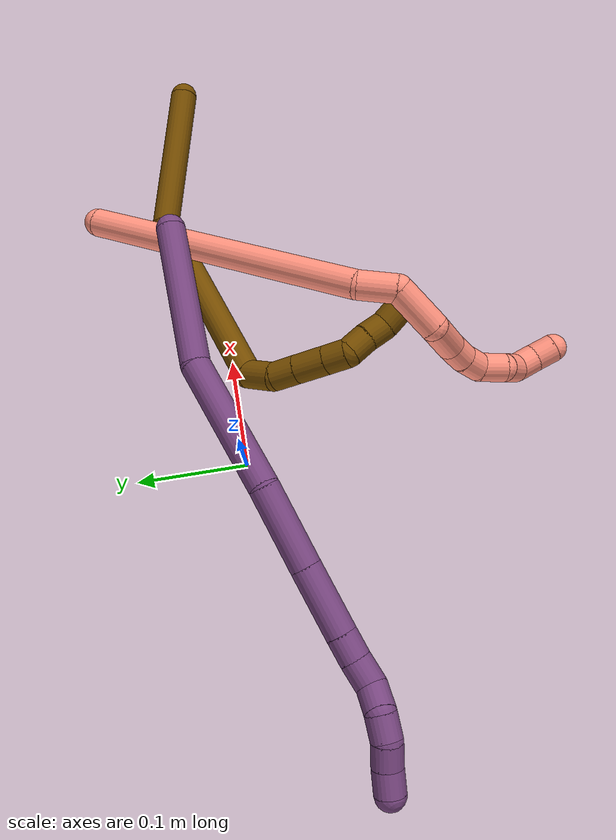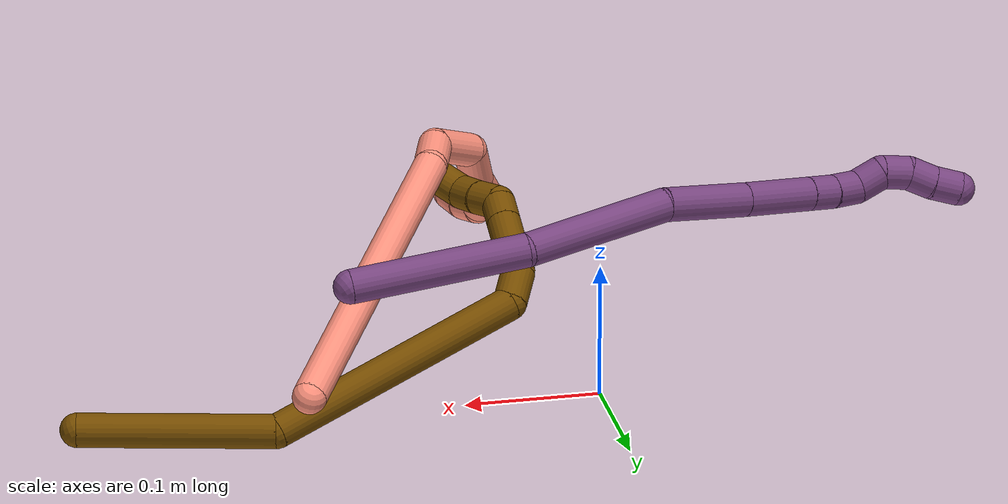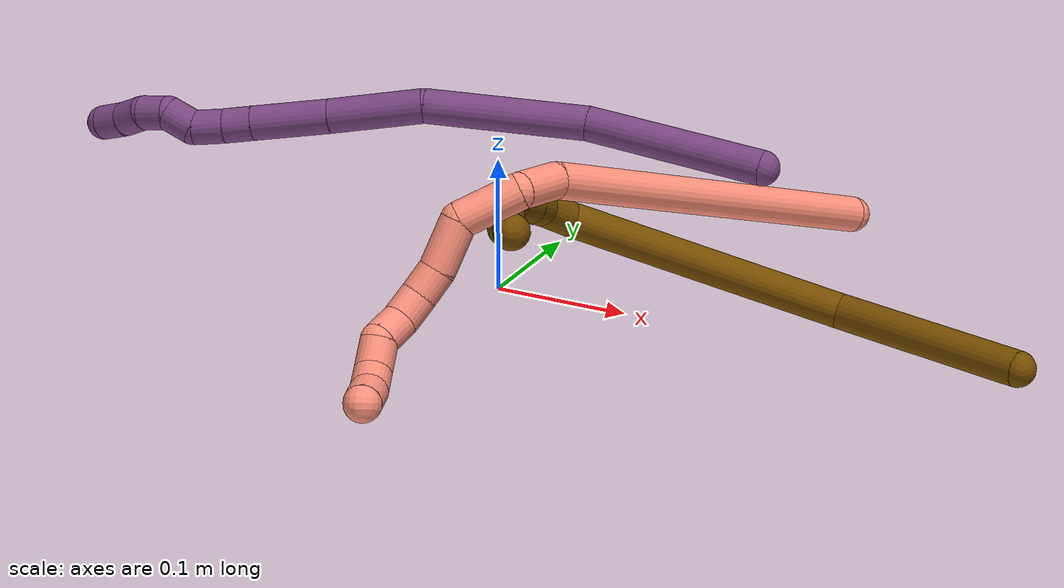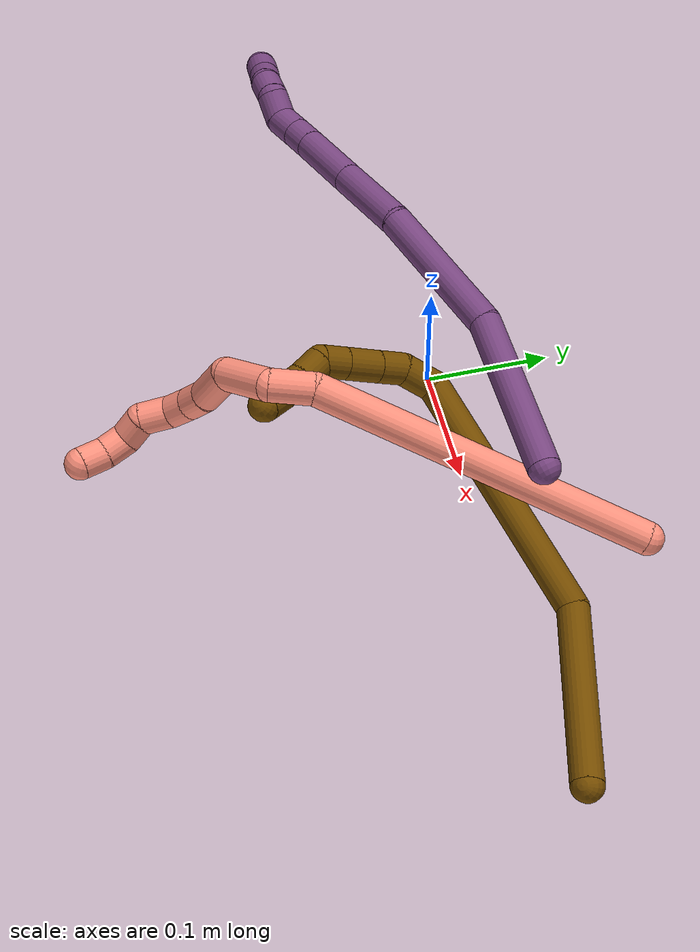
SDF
<sdf version="1.7">
 <world name="default">
  <model name="12">
   <static>0</static>
   <link name="12">
    <collision name="collision-cylinder-e_1_1_4">
     <pose>-0.064158 -0.005597 -0.030637 2.96089 -1.11888 -2.85422</pose>
     <geometry><cylinder><radius>0.0125</radius><length>0.142635</length></cylinder></geometry>
     <surface>
      <friction><ode><mu>1.16</mu><mu2>1.16</mu2><slip1>0</slip1><slip2>0</slip2></ode></friction>
      <contact><ode><kp>1e+06</kp><kd>1</kd><max_vel>0</max_vel><min_depth>0.001</min_depth></ode></contact>
     </surface>
    </collision>
    <visual name="visual-cylinder-e_1_1_4">
     <pose>-0.064158 -0.005597 -0.030637 2.96089 -1.11888 -2.85422</pose>
     <geometry><cylinder><radius>0.0125</radius><length>0.142635</length></cylinder></geometry>
     <material><ambient>0.466667 0.301961 0 1</ambient></material>
    </visual>
    <collision name="collision-cylinder-e_2_4_5">
     <pose>-0.218838 -0.052215 -0.053811 1.39085 -1.13916 -0.981563</pose>
     <geometry><cylinder><radius>0.0125</radius><length>0.199323</length></cylinder></geometry>
     <surface>
      <friction><ode><mu>1.16</mu><mu2>1.16</mu2><slip1>0</slip1><slip2>0</slip2></ode></friction>
      <contact><ode><kp>1e+06</kp><kd>1</kd><max_vel>0</max_vel><min_depth>0.001</min_depth></ode></contact>
     </surface>
    </collision>
    <visual name="visual-cylinder-e_2_4_5">
     <pose>-0.218838 -0.052215 -0.053811 1.39085 -1.13916 -0.981563</pose>
     <geometry><cylinder><radius>0.0125</radius><length>0.199323</length></cylinder></geometry>
     <material><ambient>0.466667 0.301961 0 1</ambient></material>
    </visual>
    <collision name="collision-cylinder-e_3_5_6">
     <pose>-0.316014 -0.101488 -0.037142 0.730814 -0.493793 -0.19226</pose>
     <geometry><cylinder><radius>0.0125</radius><length>0.028082</length></cylinder></geometry>
     <surface>
      <friction><ode><mu>1.16</mu><mu2>1.16</mu2><slip1>0</slip1><slip2>0</slip2></ode></friction>
      <contact><ode><kp>1e+06</kp><kd>1</kd><max_vel>0</max_vel><min_depth>0.001</min_depth></ode></contact>
     </surface>
    </collision>
    <visual name="visual-cylinder-e_3_5_6">
     <pose>-0.316014 -0.101488 -0.037142 0.730814 -0.493793 -0.19226</pose>
     <geometry><cylinder><radius>0.0125</radius><length>0.028082</length></cylinder></geometry>
     <material><ambient>0.466667 0.301961 0 1</ambient></material>
    </visual>
    <collision name="collision-cylinder-e_4_6_7">
     <pose>-0.323293 -0.116709 -0.019294 0.67861 -0.056151 -0.019823</pose>
     <geometry><cylinder><radius>0.0125</radius><length>0.022238</length></cylinder></geometry>
     <surface>
      <friction><ode><mu>1.16</mu><mu2>1.16</mu2><slip1>0</slip1><slip2>0</slip2></ode></friction>
      <contact><ode><kp>1e+06</kp><kd>1</kd><max_vel>0</max_vel><min_depth>0.001</min_depth></ode></contact>
     </surface>
    </collision>
    <visual name="visual-cylinder-e_4_6_7">
     <pose>-0.323293 -0.116709 -0.019294 0.67861 -0.056151 -0.019823</pose>
     <geometry><cylinder><radius>0.0125</radius><length>0.022238</length></cylinder></geometry>
     <material><ambient>0.466667 0.301961 0 1</ambient></material>
    </visual>
    <collision name="collision-cylinder-e_5_7_8">
     <pose>-0.324739 -0.132335 0.000103 0.677757 -0.059462 -0.020964</pose>
     <geometry><cylinder><radius>0.0125</radius><length>0.027663</length></cylinder></geometry>
     <surface>
      <friction><ode><mu>1.16</mu><mu2>1.16</mu2><slip1>0</slip1><slip2>0</slip2></ode></friction>
      <contact><ode><kp>1e+06</kp><kd>1</kd><max_vel>0</max_vel><min_depth>0.001</min_depth></ode></contact>
     </surface>
    </collision>
    <visual name="visual-cylinder-e_5_7_8">
     <pose>-0.324739 -0.132335 0.000103 0.677757 -0.059462 -0.020964</pose>
     <geometry><cylinder><radius>0.0125</radius><length>0.027663</length></cylinder></geometry>
     <material><ambient>0.466667 0.301961 0 1</ambient></material>
    </visual>
    <collision name="collision-cylinder-e_6_8_9">
     <pose>-0.326136 -0.147212 0.018673 0.672235 -0.057515 -0.020099</pose>
     <geometry><cylinder><radius>0.0125</radius><length>0.020008</length></cylinder></geometry>
     <surface>
      <friction><ode><mu>1.16</mu><mu2>1.16</mu2><slip1>0</slip1><slip2>0</slip2></ode></friction>
      <contact><ode><kp>1e+06</kp><kd>1</kd><max_vel>0</max_vel><min_depth>0.001</min_depth></ode></contact>
     </surface>
    </collision>
    <visual name="visual-cylinder-e_6_8_9">
     <pose>-0.326136 -0.147212 0.018673 0.672235 -0.057515 -0.020099</pose>
     <geometry><cylinder><radius>0.0125</radius><length>0.020008</length></cylinder></geometry>
     <material><ambient>0.466667 0.301961 0 1</ambient></material>
    </visual>
    <collision name="collision-cylinder-e_7_9_10">
     <pose>-0.32032 -0.159265 0.031528 0.858148 0.692236 0.327036</pose>
     <geometry><cylinder><radius>0.0125</radius><length>0.020027</length></cylinder></geometry>
     <surface>
      <friction><ode><mu>1.16</mu><mu2>1.16</mu2><slip1>0</slip1><slip2>0</slip2></ode></friction>
      <contact><ode><kp>1e+06</kp><kd>1</kd><max_vel>0</max_vel><min_depth>0.001</min_depth></ode></contact>
     </surface>
    </collision>
    <visual name="visual-cylinder-e_7_9_10">
     <pose>-0.32032 -0.159265 0.031528 0.858148 0.692236 0.327036</pose>
     <geometry><cylinder><radius>0.0125</radius><length>0.020027</length></cylinder></geometry>
     <material><ambient>0.466667 0.301961 0 1</ambient></material>
    </visual>
    <collision name="collision-cylinder-e_8_10_11">
     <pose>-0.308402 -0.171736 0.041622 0.920209 0.58503 0.296304</pose>
     <geometry><cylinder><radius>0.0125</radius><length>0.020016</length></cylinder></geometry>
     <surface>
      <friction><ode><mu>1.16</mu><mu2>1.16</mu2><slip1>0</slip1><slip2>0</slip2></ode></friction>
      <contact><ode><kp>1e+06</kp><kd>1</kd><max_vel>0</max_vel><min_depth>0.001</min_depth></ode></contact>
     </surface>
    </collision>
    <visual name="visual-cylinder-e_8_10_11">
     <pose>-0.308402 -0.171736 0.041622 0.920209 0.58503 0.296304</pose>
     <geometry><cylinder><radius>0.0125</radius><length>0.020016</length></cylinder></geometry>
     <material><ambient>0.466667 0.301961 0 1</ambient></material>
    </visual>
    <collision name="collision-cylinder-e_9_11_2">
     <pose>-0.297779 -0.182263 0.054355 0.468537 0.534569 0.130517</pose>
     <geometry><cylinder><radius>0.0125</radius><length>0.020007</length></cylinder></geometry>
     <surface>
      <friction><ode><mu>1.16</mu><mu2>1.16</mu2><slip1>0</slip1><slip2>0</slip2></ode></friction>
      <contact><ode><kp>1e+06</kp><kd>1</kd><max_vel>0</max_vel><min_depth>0.001</min_depth></ode></contact>
     </surface>
    </collision>
    <visual name="visual-cylinder-e_9_11_2">
     <pose>-0.297779 -0.182263 0.054355 0.468537 0.534569 0.130517</pose>
     <geometry><cylinder><radius>0.0125</radius><length>0.020007</length></cylinder></geometry>
     <material><ambient>0.466667 0.301961 0 1</ambient></material>
    </visual>
    <collision name="collision-sphere-2">
     <pose>-0.292682 -0.18615 0.062035 0 -0 0</pose>
     <geometry><sphere><radius>0.0125</radius></sphere></geometry>
     <surface>
      <friction><ode><mu>1.16</mu><mu2>1.16</mu2><slip1>0</slip1><slip2>0</slip2></ode></friction>
      <contact><ode><kp>1e+06</kp><kd>1</kd><max_vel>0</max_vel><min_depth>0.001</min_depth></ode></contact>
     </surface>
    </collision>
    <visual name="visual-sphere-2">
     <pose>-0.292682 -0.18615 0.062035 0 -0 0</pose>
     <geometry><sphere><radius>0.0125</radius></sphere></geometry>
     <material><ambient>0.466667 0.301961 0 1</ambient></material>
    </visual>
    <collision name="collision-sphere-11">
     <pose>-0.302875 -0.178376 0.046675 0 -0 0</pose>
     <geometry><sphere><radius>0.0125</radius></sphere></geometry>
     <surface>
      <friction><ode><mu>1.16</mu><mu2>1.16</mu2><slip1>0</slip1><slip2>0</slip2></ode></friction>
      <contact><ode><kp>1e+06</kp><kd>1</kd><max_vel>0</max_vel><min_depth>0.001</min_depth></ode></contact>
     </surface>
    </collision>
    <visual name="visual-sphere-11">
     <pose>-0.302875 -0.178376 0.046675 0 -0 0</pose>
     <geometry><sphere><radius>0.0125</radius></sphere></geometry>
     <material><ambient>0.466667 0.301961 0 1</ambient></material>
    </visual>
    <collision name="collision-sphere-10">
     <pose>-0.313928 -0.165097 0.036568 0 -0 0</pose>
     <geometry><sphere><radius>0.0125</radius></sphere></geometry>
     <surface>
      <friction><ode><mu>1.16</mu><mu2>1.16</mu2><slip1>0</slip1><slip2>0</slip2></ode></friction>
      <contact><ode><kp>1e+06</kp><kd>1</kd><max_vel>0</max_vel><min_depth>0.001</min_depth></ode></contact>
     </surface>
    </collision>
    <visual name="visual-sphere-10">
     <pose>-0.313928 -0.165097 0.036568 0 -0 0</pose>
     <geometry><sphere><radius>0.0125</radius></sphere></geometry>
     <material><ambient>0.466667 0.301961 0 1</ambient></material>
    </visual>
    <collision name="collision-sphere-9">
     <pose>-0.326711 -0.153432 0.026488 0 -0 0</pose>
     <geometry><sphere><radius>0.0125</radius></sphere></geometry>
     <surface>
      <friction><ode><mu>1.16</mu><mu2>1.16</mu2><slip1>0</slip1><slip2>0</slip2></ode></friction>
      <contact><ode><kp>1e+06</kp><kd>1</kd><max_vel>0</max_vel><min_depth>0.001</min_depth></ode></contact>
     </surface>
    </collision>
    <visual name="visual-sphere-9">
     <pose>-0.326711 -0.153432 0.026488 0 -0 0</pose>
     <geometry><sphere><radius>0.0125</radius></sphere></geometry>
     <material><ambient>0.466667 0.301961 0 1</ambient></material>
    </visual>
    <collision name="collision-sphere-4">
     <pose>-0.128316 -0.011194 -0.061273 0 -0 0</pose>
     <geometry><sphere><radius>0.0125</radius></sphere></geometry>
     <surface>
      <friction><ode><mu>1.16</mu><mu2>1.16</mu2><slip1>0</slip1><slip2>0</slip2></ode></friction>
      <contact><ode><kp>1e+06</kp><kd>1</kd><max_vel>0</max_vel><min_depth>0.001</min_depth></ode></contact>
     </surface>
    </collision>
    <visual name="visual-sphere-4">
     <pose>-0.128316 -0.011194 -0.061273 0 -0 0</pose>
     <geometry><sphere><radius>0.0125</radius></sphere></geometry>
     <material><ambient>0.466667 0.301961 0 1</ambient></material>
    </visual>
    <collision name="collision-sphere-1">
     <geometry><sphere><radius>0.0125</radius></sphere></geometry>
     <surface>
      <friction><ode><mu>1.16</mu><mu2>1.16</mu2><slip1>0</slip1><slip2>0</slip2></ode></friction>
      <contact><ode><kp>1e+06</kp><kd>1</kd><max_vel>0</max_vel><min_depth>0.001</min_depth></ode></contact>
     </surface>
    </collision>
    <visual name="visual-sphere-1">
     <geometry><sphere><radius>0.0125</radius></sphere></geometry>
     <material><ambient>0.466667 0.301961 0 1</ambient></material>
    </visual>
    <collision name="collision-sphere-8">
     <pose>-0.325561 -0.140993 0.010859 0 -0 0</pose>
     <geometry><sphere><radius>0.0125</radius></sphere></geometry>
     <surface>
      <friction><ode><mu>1.16</mu><mu2>1.16</mu2><slip1>0</slip1><slip2>0</slip2></ode></friction>
      <contact><ode><kp>1e+06</kp><kd>1</kd><max_vel>0</max_vel><min_depth>0.001</min_depth></ode></contact>
     </surface>
    </collision>
    <visual name="visual-sphere-8">
     <pose>-0.325561 -0.140993 0.010859 0 -0 0</pose>
     <geometry><sphere><radius>0.0125</radius></sphere></geometry>
     <material><ambient>0.466667 0.301961 0 1</ambient></material>
    </visual>
    <collision name="collision-sphere-5">
     <pose>-0.309359 -0.093236 -0.046349 0 -0 0</pose>
     <geometry><sphere><radius>0.0125</radius></sphere></geometry>
     <surface>
      <friction><ode><mu>1.16</mu><mu2>1.16</mu2><slip1>0</slip1><slip2>0</slip2></ode></friction>
      <contact><ode><kp>1e+06</kp><kd>1</kd><max_vel>0</max_vel><min_depth>0.001</min_depth></ode></contact>
     </surface>
    </collision>
    <visual name="visual-sphere-5">
     <pose>-0.309359 -0.093236 -0.046349 0 -0 0</pose>
     <geometry><sphere><radius>0.0125</radius></sphere></geometry>
     <material><ambient>0.466667 0.301961 0 1</ambient></material>
    </visual>
    <collision name="collision-sphere-6">
     <pose>-0.322669 -0.10974 -0.027936 0 -0 0</pose>
     <geometry><sphere><radius>0.0125</radius></sphere></geometry>
     <surface>
      <friction><ode><mu>1.16</mu><mu2>1.16</mu2><slip1>0</slip1><slip2>0</slip2></ode></friction>
      <contact><ode><kp>1e+06</kp><kd>1</kd><max_vel>0</max_vel><min_depth>0.001</min_depth></ode></contact>
     </surface>
    </collision>
    <visual name="visual-sphere-6">
     <pose>-0.322669 -0.10974 -0.027936 0 -0 0</pose>
     <geometry><sphere><radius>0.0125</radius></sphere></geometry>
     <material><ambient>0.466667 0.301961 0 1</ambient></material>
    </visual>
    <collision name="collision-sphere-7">
     <pose>-0.323917 -0.123678 -0.010652 0 -0 0</pose>
     <geometry><sphere><radius>0.0125</radius></sphere></geometry>
     <surface>
      <friction><ode><mu>1.16</mu><mu2>1.16</mu2><slip1>0</slip1><slip2>0</slip2></ode></friction>
      <contact><ode><kp>1e+06</kp><kd>1</kd><max_vel>0</max_vel><min_depth>0.001</min_depth></ode></contact>
     </surface>
    </collision>
    <visual name="visual-sphere-7">
     <pose>-0.323917 -0.123678 -0.010652 0 -0 0</pose>
     <geometry><sphere><radius>0.0125</radius></sphere></geometry>
     <material><ambient>0.466667 0.301961 0 1</ambient></material>
    </visual>
    <inertial>
     <pose>-0.205777 -0.067062 -0.027279 0 -0 0</pose>
     <mass>0.5</mass>
     <inertia>
      <ixx>-0.000222</ixx>
      <ixy>0</ixy>
      <ixz>0</ixz>
      <iyy>0.000541</iyy>
      <iyz>0</iyz>
      <izz>0.001135</izz>
     </inertia>
    </inertial>
   </link>
   <pose>0.383858 0.010442 0.012184 0.452143 0.445817 -0.12226</pose>
  </model>
  <model name="16">
   <static>0</static>
   <link name="16">
    <collision name="collision-cylinder-e_1_1_4">
     <pose>-0.040674 -0.124476 0.001271 1.56059 -0.31581 -0.312654</pose>
     <geometry><cylinder><radius>0.0125</radius><length>0.261918</length></cylinder></geometry>
     <surface>
      <friction><ode><mu>1.16</mu><mu2>1.16</mu2><slip1>0</slip1><slip2>0</slip2></ode></friction>
      <contact><ode><kp>1e+06</kp><kd>1</kd><max_vel>0</max_vel><min_depth>0.001</min_depth></ode></contact>
     </surface>
    </collision>
    <visual name="visual-cylinder-e_1_1_4">
     <pose>-0.040674 -0.124476 0.001271 1.56059 -0.31581 -0.312654</pose>
     <geometry><cylinder><radius>0.0125</radius><length>0.261918</length></cylinder></geometry>
     <material><ambient>1 0.576471 0.494118 1</ambient></material>
    </visual>
    <collision name="collision-cylinder-e_2_4_5">
     <pose>-0.083959 -0.264886 -0.002346 1.86846 -0.155396 -0.209866</pose>
     <geometry><cylinder><radius>0.0125</radius><length>0.03374</length></cylinder></geometry>
     <surface>
      <friction><ode><mu>1.16</mu><mu2>1.16</mu2><slip1>0</slip1><slip2>0</slip2></ode></friction>
      <contact><ode><kp>1e+06</kp><kd>1</kd><max_vel>0</max_vel><min_depth>0.001</min_depth></ode></contact>
     </surface>
    </collision>
    <visual name="visual-cylinder-e_2_4_5">
     <pose>-0.083959 -0.264886 -0.002346 1.86846 -0.155396 -0.209866</pose>
     <geometry><cylinder><radius>0.0125</radius><length>0.03374</length></cylinder></geometry>
     <material><ambient>1 0.576471 0.494118 1</ambient></material>
    </visual>
    <collision name="collision-cylinder-e_3_5_6">
     <pose>-0.102237 -0.292221 -0.017362 2.2971 -0.798903 -1.50857</pose>
     <geometry><cylinder><radius>0.0125</radius><length>0.043727</length></cylinder></geometry>
     <surface>
      <friction><ode><mu>1.16</mu><mu2>1.16</mu2><slip1>0</slip1><slip2>0</slip2></ode></friction>
      <contact><ode><kp>1e+06</kp><kd>1</kd><max_vel>0</max_vel><min_depth>0.001</min_depth></ode></contact>
     </surface>
    </collision>
    <visual name="visual-cylinder-e_3_5_6">
     <pose>-0.102237 -0.292221 -0.017362 2.2971 -0.798903 -1.50857</pose>
     <geometry><cylinder><radius>0.0125</radius><length>0.043727</length></cylinder></geometry>
     <material><ambient>1 0.576471 0.494118 1</ambient></material>
    </visual>
    <collision name="collision-cylinder-e_4_6_7">
     <pose>-0.12449 -0.305645 -0.043513 3.016 -0.387142 -2.52078</pose>
     <geometry><cylinder><radius>0.0125</radius><length>0.034885</length></cylinder></geometry>
     <surface>
      <friction><ode><mu>1.16</mu><mu2>1.16</mu2><slip1>0</slip1><slip2>0</slip2></ode></friction>
      <contact><ode><kp>1e+06</kp><kd>1</kd><max_vel>0</max_vel><min_depth>0.001</min_depth></ode></contact>
     </surface>
    </collision>
    <visual name="visual-cylinder-e_4_6_7">
     <pose>-0.12449 -0.305645 -0.043513 3.016 -0.387142 -2.52078</pose>
     <geometry><cylinder><radius>0.0125</radius><length>0.034885</length></cylinder></geometry>
     <material><ambient>1 0.576471 0.494118 1</ambient></material>
    </visual>
    <collision name="collision-cylinder-e_5_7_8">
     <pose>-0.135833 -0.3107 -0.067897 2.79361 -0.491333 -1.91876</pose>
     <geometry><cylinder><radius>0.0125</radius><length>0.02017</length></cylinder></geometry>
     <surface>
      <friction><ode><mu>1.16</mu><mu2>1.16</mu2><slip1>0</slip1><slip2>0</slip2></ode></friction>
      <contact><ode><kp>1e+06</kp><kd>1</kd><max_vel>0</max_vel><min_depth>0.001</min_depth></ode></contact>
     </surface>
    </collision>
    <visual name="visual-cylinder-e_5_7_8">
     <pose>-0.135833 -0.3107 -0.067897 2.79361 -0.491333 -1.91876</pose>
     <geometry><cylinder><radius>0.0125</radius><length>0.02017</length></cylinder></geometry>
     <material><ambient>1 0.576471 0.494118 1</ambient></material>
    </visual>
    <collision name="collision-cylinder-e_6_8_9">
     <pose>-0.144419 -0.318386 -0.084688 2.63731 -0.378326 -1.27819</pose>
     <geometry><cylinder><radius>0.0125</radius><length>0.020727</length></cylinder></geometry>
     <surface>
      <friction><ode><mu>1.16</mu><mu2>1.16</mu2><slip1>0</slip1><slip2>0</slip2></ode></friction>
      <contact><ode><kp>1e+06</kp><kd>1</kd><max_vel>0</max_vel><min_depth>0.001</min_depth></ode></contact>
     </surface>
    </collision>
    <visual name="visual-cylinder-e_6_8_9">
     <pose>-0.144419 -0.318386 -0.084688 2.63731 -0.378326 -1.27819</pose>
     <geometry><cylinder><radius>0.0125</radius><length>0.020727</length></cylinder></geometry>
     <material><ambient>1 0.576471 0.494118 1</ambient></material>
    </visual>
    <collision name="collision-cylinder-e_7_9_10">
     <pose>-0.148592 -0.332521 -0.09988 2.19016 -0.029575 -0.057396</pose>
     <geometry><cylinder><radius>0.0125</radius><length>0.023299</length></cylinder></geometry>
     <surface>
      <friction><ode><mu>1.16</mu><mu2>1.16</mu2><slip1>0</slip1><slip2>0</slip2></ode></friction>
      <contact><ode><kp>1e+06</kp><kd>1</kd><max_vel>0</max_vel><min_depth>0.001</min_depth></ode></contact>
     </surface>
    </collision>
    <visual name="visual-cylinder-e_7_9_10">
     <pose>-0.148592 -0.332521 -0.09988 2.19016 -0.029575 -0.057396</pose>
     <geometry><cylinder><radius>0.0125</radius><length>0.023299</length></cylinder></geometry>
     <material><ambient>1 0.576471 0.494118 1</ambient></material>
    </visual>
    <collision name="collision-cylinder-e_8_10_11">
     <pose>-0.148821 -0.344757 -0.116812 2.87719 0.010953 0.082323</pose>
     <geometry><cylinder><radius>0.0125</radius><length>0.021079</length></cylinder></geometry>
     <surface>
      <friction><ode><mu>1.16</mu><mu2>1.16</mu2><slip1>0</slip1><slip2>0</slip2></ode></friction>
      <contact><ode><kp>1e+06</kp><kd>1</kd><max_vel>0</max_vel><min_depth>0.001</min_depth></ode></contact>
     </surface>
    </collision>
    <visual name="visual-cylinder-e_8_10_11">
     <pose>-0.148821 -0.344757 -0.116812 2.87719 0.010953 0.082323</pose>
     <geometry><cylinder><radius>0.0125</radius><length>0.021079</length></cylinder></geometry>
     <material><ambient>1 0.576471 0.494118 1</ambient></material>
    </visual>
    <collision name="collision-cylinder-e_9_11_12">
     <pose>-0.144428 -0.35432 -0.133124 2.3045 0.436478 0.924981</pose>
     <geometry><cylinder><radius>0.0125</radius><length>0.020234</length></cylinder></geometry>
     <surface>
      <friction><ode><mu>1.16</mu><mu2>1.16</mu2><slip1>0</slip1><slip2>0</slip2></ode></friction>
      <contact><ode><kp>1e+06</kp><kd>1</kd><max_vel>0</max_vel><min_depth>0.001</min_depth></ode></contact>
     </surface>
    </collision>
    <visual name="visual-cylinder-e_9_11_12">
     <pose>-0.144428 -0.35432 -0.133124 2.3045 0.436478 0.924981</pose>
     <geometry><cylinder><radius>0.0125</radius><length>0.020234</length></cylinder></geometry>
     <material><ambient>1 0.576471 0.494118 1</ambient></material>
    </visual>
    <collision name="collision-cylinder-e_10_12_2">
     <pose>-0.135778 -0.369312 -0.14328 2.02711 0.447312 0.700024</pose>
     <geometry><cylinder><radius>0.0125</radius><length>0.020221</length></cylinder></geometry>
     <surface>
      <friction><ode><mu>1.16</mu><mu2>1.16</mu2><slip1>0</slip1><slip2>0</slip2></ode></friction>
      <contact><ode><kp>1e+06</kp><kd>1</kd><max_vel>0</max_vel><min_depth>0.001</min_depth></ode></contact>
     </surface>
    </collision>
    <visual name="visual-cylinder-e_10_12_2">
     <pose>-0.135778 -0.369312 -0.14328 2.02711 0.447312 0.700024</pose>
     <geometry><cylinder><radius>0.0125</radius><length>0.020221</length></cylinder></geometry>
     <material><ambient>1 0.576471 0.494118 1</ambient></material>
    </visual>
    <collision name="collision-sphere-2">
     <pose>-0.131405 -0.377495 -0.147297 0 -0 0</pose>
     <geometry><sphere><radius>0.0125</radius></sphere></geometry>
     <surface>
      <friction><ode><mu>1.16</mu><mu2>1.16</mu2><slip1>0</slip1><slip2>0</slip2></ode></friction>
      <contact><ode><kp>1e+06</kp><kd>1</kd><max_vel>0</max_vel><min_depth>0.001</min_depth></ode></contact>
     </surface>
    </collision>
    <visual name="visual-sphere-2">
     <pose>-0.131405 -0.377495 -0.147297 0 -0 0</pose>
     <geometry><sphere><radius>0.0125</radius></sphere></geometry>
     <material><ambient>1 0.576471 0.494118 1</ambient></material>
    </visual>
    <collision name="collision-sphere-12">
     <pose>-0.140151 -0.361129 -0.139263 0 -0 0</pose>
     <geometry><sphere><radius>0.0125</radius></sphere></geometry>
     <surface>
      <friction><ode><mu>1.16</mu><mu2>1.16</mu2><slip1>0</slip1><slip2>0</slip2></ode></friction>
      <contact><ode><kp>1e+06</kp><kd>1</kd><max_vel>0</max_vel><min_depth>0.001</min_depth></ode></contact>
     </surface>
    </collision>
    <visual name="visual-sphere-12">
     <pose>-0.140151 -0.361129 -0.139263 0 -0 0</pose>
     <geometry><sphere><radius>0.0125</radius></sphere></geometry>
     <material><ambient>1 0.576471 0.494118 1</ambient></material>
    </visual>
    <collision name="collision-sphere-11">
     <pose>-0.148705 -0.347511 -0.126985 0 -0 0</pose>
     <geometry><sphere><radius>0.0125</radius></sphere></geometry>
     <surface>
      <friction><ode><mu>1.16</mu><mu2>1.16</mu2><slip1>0</slip1><slip2>0</slip2></ode></friction>
      <contact><ode><kp>1e+06</kp><kd>1</kd><max_vel>0</max_vel><min_depth>0.001</min_depth></ode></contact>
     </surface>
    </collision>
    <visual name="visual-sphere-11">
     <pose>-0.148705 -0.347511 -0.126985 0 -0 0</pose>
     <geometry><sphere><radius>0.0125</radius></sphere></geometry>
     <material><ambient>1 0.576471 0.494118 1</ambient></material>
    </visual>
    <collision name="collision-sphere-10">
     <pose>-0.148936 -0.342003 -0.10664 0 -0 0</pose>
     <geometry><sphere><radius>0.0125</radius></sphere></geometry>
     <surface>
      <friction><ode><mu>1.16</mu><mu2>1.16</mu2><slip1>0</slip1><slip2>0</slip2></ode></friction>
      <contact><ode><kp>1e+06</kp><kd>1</kd><max_vel>0</max_vel><min_depth>0.001</min_depth></ode></contact>
     </surface>
    </collision>
    <visual name="visual-sphere-10">
     <pose>-0.148936 -0.342003 -0.10664 0 -0 0</pose>
     <geometry><sphere><radius>0.0125</radius></sphere></geometry>
     <material><ambient>1 0.576471 0.494118 1</ambient></material>
    </visual>
    <collision name="collision-sphere-9">
     <pose>-0.148247 -0.323039 -0.09312 0 -0 0</pose>
     <geometry><sphere><radius>0.0125</radius></sphere></geometry>
     <surface>
      <friction><ode><mu>1.16</mu><mu2>1.16</mu2><slip1>0</slip1><slip2>0</slip2></ode></friction>
      <contact><ode><kp>1e+06</kp><kd>1</kd><max_vel>0</max_vel><min_depth>0.001</min_depth></ode></contact>
     </surface>
    </collision>
    <visual name="visual-sphere-9">
     <pose>-0.148247 -0.323039 -0.09312 0 -0 0</pose>
     <geometry><sphere><radius>0.0125</radius></sphere></geometry>
     <material><ambient>1 0.576471 0.494118 1</ambient></material>
    </visual>
    <collision name="collision-sphere-4">
     <pose>-0.081348 -0.248952 0.002542 0 -0 0</pose>
     <geometry><sphere><radius>0.0125</radius></sphere></geometry>
     <surface>
      <friction><ode><mu>1.16</mu><mu2>1.16</mu2><slip1>0</slip1><slip2>0</slip2></ode></friction>
      <contact><ode><kp>1e+06</kp><kd>1</kd><max_vel>0</max_vel><min_depth>0.001</min_depth></ode></contact>
     </surface>
    </collision>
    <visual name="visual-sphere-4">
     <pose>-0.081348 -0.248952 0.002542 0 -0 0</pose>
     <geometry><sphere><radius>0.0125</radius></sphere></geometry>
     <material><ambient>1 0.576471 0.494118 1</ambient></material>
    </visual>
    <collision name="collision-sphere-1">
     <geometry><sphere><radius>0.0125</radius></sphere></geometry>
     <surface>
      <friction><ode><mu>1.16</mu><mu2>1.16</mu2><slip1>0</slip1><slip2>0</slip2></ode></friction>
      <contact><ode><kp>1e+06</kp><kd>1</kd><max_vel>0</max_vel><min_depth>0.001</min_depth></ode></contact>
     </surface>
    </collision>
    <visual name="visual-sphere-1">
     <geometry><sphere><radius>0.0125</radius></sphere></geometry>
     <material><ambient>1 0.576471 0.494118 1</ambient></material>
    </visual>
    <collision name="collision-sphere-8">
     <pose>-0.140591 -0.313733 -0.076256 0 -0 0</pose>
     <geometry><sphere><radius>0.0125</radius></sphere></geometry>
     <surface>
      <friction><ode><mu>1.16</mu><mu2>1.16</mu2><slip1>0</slip1><slip2>0</slip2></ode></friction>
      <contact><ode><kp>1e+06</kp><kd>1</kd><max_vel>0</max_vel><min_depth>0.001</min_depth></ode></contact>
     </surface>
    </collision>
    <visual name="visual-sphere-8">
     <pose>-0.140591 -0.313733 -0.076256 0 -0 0</pose>
     <geometry><sphere><radius>0.0125</radius></sphere></geometry>
     <material><ambient>1 0.576471 0.494118 1</ambient></material>
    </visual>
    <collision name="collision-sphere-5">
     <pose>-0.08657 -0.28082 -0.007234 0 -0 0</pose>
     <geometry><sphere><radius>0.0125</radius></sphere></geometry>
     <surface>
      <friction><ode><mu>1.16</mu><mu2>1.16</mu2><slip1>0</slip1><slip2>0</slip2></ode></friction>
      <contact><ode><kp>1e+06</kp><kd>1</kd><max_vel>0</max_vel><min_depth>0.001</min_depth></ode></contact>
     </surface>
    </collision>
    <visual name="visual-sphere-5">
     <pose>-0.08657 -0.28082 -0.007234 0 -0 0</pose>
     <geometry><sphere><radius>0.0125</radius></sphere></geometry>
     <material><ambient>1 0.576471 0.494118 1</ambient></material>
    </visual>
    <collision name="collision-sphere-6">
     <pose>-0.117904 -0.303622 -0.027489 0 -0 0</pose>
     <geometry><sphere><radius>0.0125</radius></sphere></geometry>
     <surface>
      <friction><ode><mu>1.16</mu><mu2>1.16</mu2><slip1>0</slip1><slip2>0</slip2></ode></friction>
      <contact><ode><kp>1e+06</kp><kd>1</kd><max_vel>0</max_vel><min_depth>0.001</min_depth></ode></contact>
     </surface>
    </collision>
    <visual name="visual-sphere-6">
     <pose>-0.117904 -0.303622 -0.027489 0 -0 0</pose>
     <geometry><sphere><radius>0.0125</radius></sphere></geometry>
     <material><ambient>1 0.576471 0.494118 1</ambient></material>
    </visual>
    <collision name="collision-sphere-7">
     <pose>-0.131075 -0.307668 -0.059538 0 -0 0</pose>
     <geometry><sphere><radius>0.0125</radius></sphere></geometry>
     <surface>
      <friction><ode><mu>1.16</mu><mu2>1.16</mu2><slip1>0</slip1><slip2>0</slip2></ode></friction>
      <contact><ode><kp>1e+06</kp><kd>1</kd><max_vel>0</max_vel><min_depth>0.001</min_depth></ode></contact>
     </surface>
    </collision>
    <visual name="visual-sphere-7">
     <pose>-0.131075 -0.307668 -0.059538 0 -0 0</pose>
     <geometry><sphere><radius>0.0125</radius></sphere></geometry>
     <material><ambient>1 0.576471 0.494118 1</ambient></material>
    </visual>
    <inertial>
     <pose>-0.080599 -0.214996 -0.031057 0 -0 0</pose>
     <mass>0.5</mass>
     <inertia>
      <ixx>0.000909</ixx>
      <ixy>0</ixy>
      <ixz>0</ixz>
      <iyy>-0.000317</iyy>
      <iyz>0</iyz>
      <izz>0.001913</izz>
     </inertia>
    </inertial>
   </link>
   <pose>0.231136 0.10006 0.06381 -0.403981 -0.242633 -0.118766</pose>
  </model>
  <model name="20">
   <static>0</static>
   <link name="20">
    <collision name="collision-cylinder-e_1_1_4">
     <pose>-0.02501 0.00324 0.060291 -0.05368 -0.392713 0.010681</pose>
     <geometry><cylinder><radius>0.0125</radius><length>0.130705</length></cylinder></geometry>
     <surface>
      <friction><ode><mu>1.16</mu><mu2>1.16</mu2><slip1>0</slip1><slip2>0</slip2></ode></friction>
      <contact><ode><kp>1e+06</kp><kd>1</kd><max_vel>0</max_vel><min_depth>0.001</min_depth></ode></contact>
     </surface>
    </collision>
    <visual name="visual-cylinder-e_1_1_4">
     <pose>-0.02501 0.00324 0.060291 -0.05368 -0.392713 0.010681</pose>
     <geometry><cylinder><radius>0.0125</radius><length>0.130705</length></cylinder></geometry>
     <material><ambient>0.478431 0.278431 0.509804 1</ambient></material>
    </visual>
    <collision name="collision-cylinder-e_2_4_5">
     <pose>-0.065746 -0.006852 0.175251 0.239186 -0.272501 -0.032947</pose>
     <geometry><cylinder><radius>0.0125</radius><length>0.116856</length></cylinder></geometry>
     <surface>
      <friction><ode><mu>1.16</mu><mu2>1.16</mu2><slip1>0</slip1><slip2>0</slip2></ode></friction>
      <contact><ode><kp>1e+06</kp><kd>1</kd><max_vel>0</max_vel><min_depth>0.001</min_depth></ode></contact>
     </surface>
    </collision>
    <visual name="visual-cylinder-e_2_4_5">
     <pose>-0.065746 -0.006852 0.175251 0.239186 -0.272501 -0.032947</pose>
     <geometry><cylinder><radius>0.0125</radius><length>0.116856</length></cylinder></geometry>
     <material><ambient>0.478431 0.278431 0.509804 1</ambient></material>
    </visual>
    <collision name="collision-cylinder-e_3_5_6">
     <pose>-0.097317 -0.031024 0.258576 0.361675 -0.477323 -0.088908</pose>
     <geometry><cylinder><radius>0.0125</radius><length>0.068984</length></cylinder></geometry>
     <surface>
      <friction><ode><mu>1.16</mu><mu2>1.16</mu2><slip1>0</slip1><slip2>0</slip2></ode></friction>
      <contact><ode><kp>1e+06</kp><kd>1</kd><max_vel>0</max_vel><min_depth>0.001</min_depth></ode></contact>
     </surface>
    </collision>
    <visual name="visual-cylinder-e_3_5_6">
     <pose>-0.097317 -0.031024 0.258576 0.361675 -0.477323 -0.088908</pose>
     <geometry><cylinder><radius>0.0125</radius><length>0.068984</length></cylinder></geometry>
     <material><ambient>0.478431 0.278431 0.509804 1</ambient></material>
    </visual>
    <collision name="collision-cylinder-e_4_6_7">
     <pose>-0.125605 -0.050707 0.311017 0.355891 -0.455858 -0.083386</pose>
     <geometry><cylinder><radius>0.0125</radius><length>0.056525</length></cylinder></geometry>
     <surface>
      <friction><ode><mu>1.16</mu><mu2>1.16</mu2><slip1>0</slip1><slip2>0</slip2></ode></friction>
      <contact><ode><kp>1e+06</kp><kd>1</kd><max_vel>0</max_vel><min_depth>0.001</min_depth></ode></contact>
     </surface>
    </collision>
    <visual name="visual-cylinder-e_4_6_7">
     <pose>-0.125605 -0.050707 0.311017 0.355891 -0.455858 -0.083386</pose>
     <geometry><cylinder><radius>0.0125</radius><length>0.056525</length></cylinder></geometry>
     <material><ambient>0.478431 0.278431 0.509804 1</ambient></material>
    </visual>
    <collision name="collision-cylinder-e_5_7_8">
     <pose>-0.142704 -0.062999 0.343751 0.36803 -0.452086 -0.085553</pose>
     <geometry><cylinder><radius>0.0125</radius><length>0.021321</length></cylinder></geometry>
     <surface>
      <friction><ode><mu>1.16</mu><mu2>1.16</mu2><slip1>0</slip1><slip2>0</slip2></ode></friction>
      <contact><ode><kp>1e+06</kp><kd>1</kd><max_vel>0</max_vel><min_depth>0.001</min_depth></ode></contact>
     </surface>
    </collision>
    <visual name="visual-cylinder-e_5_7_8">
     <pose>-0.142704 -0.062999 0.343751 0.36803 -0.452086 -0.085553</pose>
     <geometry><cylinder><radius>0.0125</radius><length>0.021321</length></cylinder></geometry>
     <material><ambient>0.478431 0.278431 0.509804 1</ambient></material>
    </visual>
    <collision name="collision-cylinder-e_6_8_9">
     <pose>-0.151453 -0.07033 0.362564 0.374736 -0.368363 -0.07061</pose>
     <geometry><cylinder><radius>0.0125</radius><length>0.022728</length></cylinder></geometry>
     <surface>
      <friction><ode><mu>1.16</mu><mu2>1.16</mu2><slip1>0</slip1><slip2>0</slip2></ode></friction>
      <contact><ode><kp>1e+06</kp><kd>1</kd><max_vel>0</max_vel><min_depth>0.001</min_depth></ode></contact>
     </surface>
    </collision>
    <visual name="visual-cylinder-e_6_8_9">
     <pose>-0.151453 -0.07033 0.362564 0.374736 -0.368363 -0.07061</pose>
     <geometry><cylinder><radius>0.0125</radius><length>0.022728</length></cylinder></geometry>
     <material><ambient>0.478431 0.278431 0.509804 1</ambient></material>
    </visual>
    <collision name="collision-cylinder-e_7_9_10">
     <pose>-0.15632 -0.072872 0.383169 -0.124002 -0.071449 0.004437</pose>
     <geometry><cylinder><radius>0.0125</radius><length>0.021698</length></cylinder></geometry>
     <surface>
      <friction><ode><mu>1.16</mu><mu2>1.16</mu2><slip1>0</slip1><slip2>0</slip2></ode></friction>
      <contact><ode><kp>1e+06</kp><kd>1</kd><max_vel>0</max_vel><min_depth>0.001</min_depth></ode></contact>
     </surface>
    </collision>
    <visual name="visual-cylinder-e_7_9_10">
     <pose>-0.15632 -0.072872 0.383169 -0.124002 -0.071449 0.004437</pose>
     <geometry><cylinder><radius>0.0125</radius><length>0.021698</length></cylinder></geometry>
     <material><ambient>0.478431 0.278431 0.509804 1</ambient></material>
    </visual>
    <collision name="collision-cylinder-e_8_10_11">
     <pose>-0.162897 -0.072269 0.402384 0.086625 -0.598583 -0.026744</pose>
     <geometry><cylinder><radius>0.0125</radius><length>0.020598</length></cylinder></geometry>
     <surface>
      <friction><ode><mu>1.16</mu><mu2>1.16</mu2><slip1>0</slip1><slip2>0</slip2></ode></friction>
      <contact><ode><kp>1e+06</kp><kd>1</kd><max_vel>0</max_vel><min_depth>0.001</min_depth></ode></contact>
     </surface>
    </collision>
    <visual name="visual-cylinder-e_8_10_11">
     <pose>-0.162897 -0.072269 0.402384 0.086625 -0.598583 -0.026744</pose>
     <geometry><cylinder><radius>0.0125</radius><length>0.020598</length></cylinder></geometry>
     <material><ambient>0.478431 0.278431 0.509804 1</ambient></material>
    </visual>
    <collision name="collision-cylinder-e_9_11_12">
     <pose>-0.176894 -0.073461 0.416674 0.078209 -0.95224 -0.040347</pose>
     <geometry><cylinder><radius>0.0125</radius><length>0.020114</length></cylinder></geometry>
     <surface>
      <friction><ode><mu>1.16</mu><mu2>1.16</mu2><slip1>0</slip1><slip2>0</slip2></ode></friction>
      <contact><ode><kp>1e+06</kp><kd>1</kd><max_vel>0</max_vel><min_depth>0.001</min_depth></ode></contact>
     </surface>
    </collision>
    <visual name="visual-cylinder-e_9_11_12">
     <pose>-0.176894 -0.073461 0.416674 0.078209 -0.95224 -0.040347</pose>
     <geometry><cylinder><radius>0.0125</radius><length>0.020114</length></cylinder></geometry>
     <material><ambient>0.478431 0.278431 0.509804 1</ambient></material>
    </visual>
    <collision name="collision-cylinder-e_10_12_2">
     <pose>-0.192441 -0.074327 0.429595 0.057698 -0.801588 -0.024454</pose>
     <geometry><cylinder><radius>0.0125</radius><length>0.02047</length></cylinder></geometry>
     <surface>
      <friction><ode><mu>1.16</mu><mu2>1.16</mu2><slip1>0</slip1><slip2>0</slip2></ode></friction>
      <contact><ode><kp>1e+06</kp><kd>1</kd><max_vel>0</max_vel><min_depth>0.001</min_depth></ode></contact>
     </surface>
    </collision>
    <visual name="visual-cylinder-e_10_12_2">
     <pose>-0.192441 -0.074327 0.429595 0.057698 -0.801588 -0.024454</pose>
     <geometry><cylinder><radius>0.0125</radius><length>0.02047</length></cylinder></geometry>
     <material><ambient>0.478431 0.278431 0.509804 1</ambient></material>
    </visual>
    <collision name="collision-sphere-2">
     <pose>-0.199795 -0.074738 0.436702 0 -0 0</pose>
     <geometry><sphere><radius>0.0125</radius></sphere></geometry>
     <surface>
      <friction><ode><mu>1.16</mu><mu2>1.16</mu2><slip1>0</slip1><slip2>0</slip2></ode></friction>
      <contact><ode><kp>1e+06</kp><kd>1</kd><max_vel>0</max_vel><min_depth>0.001</min_depth></ode></contact>
     </surface>
    </collision>
    <visual name="visual-sphere-2">
     <pose>-0.199795 -0.074738 0.436702 0 -0 0</pose>
     <geometry><sphere><radius>0.0125</radius></sphere></geometry>
     <material><ambient>0.478431 0.278431 0.509804 1</ambient></material>
    </visual>
    <collision name="collision-sphere-12">
     <pose>-0.185088 -0.073917 0.422488 0 -0 0</pose>
     <geometry><sphere><radius>0.0125</radius></sphere></geometry>
     <surface>
      <friction><ode><mu>1.16</mu><mu2>1.16</mu2><slip1>0</slip1><slip2>0</slip2></ode></friction>
      <contact><ode><kp>1e+06</kp><kd>1</kd><max_vel>0</max_vel><min_depth>0.001</min_depth></ode></contact>
     </surface>
    </collision>
    <visual name="visual-sphere-12">
     <pose>-0.185088 -0.073917 0.422488 0 -0 0</pose>
     <geometry><sphere><radius>0.0125</radius></sphere></geometry>
     <material><ambient>0.478431 0.278431 0.509804 1</ambient></material>
    </visual>
    <collision name="collision-sphere-11">
     <pose>-0.1687 -0.073005 0.41086 0 -0 0</pose>
     <geometry><sphere><radius>0.0125</radius></sphere></geometry>
     <surface>
      <friction><ode><mu>1.16</mu><mu2>1.16</mu2><slip1>0</slip1><slip2>0</slip2></ode></friction>
      <contact><ode><kp>1e+06</kp><kd>1</kd><max_vel>0</max_vel><min_depth>0.001</min_depth></ode></contact>
     </surface>
    </collision>
    <visual name="visual-sphere-11">
     <pose>-0.1687 -0.073005 0.41086 0 -0 0</pose>
     <geometry><sphere><radius>0.0125</radius></sphere></geometry>
     <material><ambient>0.478431 0.278431 0.509804 1</ambient></material>
    </visual>
    <collision name="collision-sphere-10">
     <pose>-0.157094 -0.071533 0.393907 0 -0 0</pose>
     <geometry><sphere><radius>0.0125</radius></sphere></geometry>
     <surface>
      <friction><ode><mu>1.16</mu><mu2>1.16</mu2><slip1>0</slip1><slip2>0</slip2></ode></friction>
      <contact><ode><kp>1e+06</kp><kd>1</kd><max_vel>0</max_vel><min_depth>0.001</min_depth></ode></contact>
     </surface>
    </collision>
    <visual name="visual-sphere-10">
     <pose>-0.157094 -0.071533 0.393907 0 -0 0</pose>
     <geometry><sphere><radius>0.0125</radius></sphere></geometry>
     <material><ambient>0.478431 0.278431 0.509804 1</ambient></material>
    </visual>
    <collision name="collision-sphere-9">
     <pose>-0.155545 -0.07421 0.37243 0 -0 0</pose>
     <geometry><sphere><radius>0.0125</radius></sphere></geometry>
     <surface>
      <friction><ode><mu>1.16</mu><mu2>1.16</mu2><slip1>0</slip1><slip2>0</slip2></ode></friction>
      <contact><ode><kp>1e+06</kp><kd>1</kd><max_vel>0</max_vel><min_depth>0.001</min_depth></ode></contact>
     </surface>
    </collision>
    <visual name="visual-sphere-9">
     <pose>-0.155545 -0.07421 0.37243 0 -0 0</pose>
     <geometry><sphere><radius>0.0125</radius></sphere></geometry>
     <material><ambient>0.478431 0.278431 0.509804 1</ambient></material>
    </visual>
    <collision name="collision-sphere-4">
     <pose>-0.05002 0.006479 0.120581 0 -0 0</pose>
     <geometry><sphere><radius>0.0125</radius></sphere></geometry>
     <surface>
      <friction><ode><mu>1.16</mu><mu2>1.16</mu2><slip1>0</slip1><slip2>0</slip2></ode></friction>
      <contact><ode><kp>1e+06</kp><kd>1</kd><max_vel>0</max_vel><min_depth>0.001</min_depth></ode></contact>
     </surface>
    </collision>
    <visual name="visual-sphere-4">
     <pose>-0.05002 0.006479 0.120581 0 -0 0</pose>
     <geometry><sphere><radius>0.0125</radius></sphere></geometry>
     <material><ambient>0.478431 0.278431 0.509804 1</ambient></material>
    </visual>
    <collision name="collision-sphere-1">
     <geometry><sphere><radius>0.0125</radius></sphere></geometry>
     <surface>
      <friction><ode><mu>1.16</mu><mu2>1.16</mu2><slip1>0</slip1><slip2>0</slip2></ode></friction>
      <contact><ode><kp>1e+06</kp><kd>1</kd><max_vel>0</max_vel><min_depth>0.001</min_depth></ode></contact>
     </surface>
    </collision>
    <visual name="visual-sphere-1">
     <geometry><sphere><radius>0.0125</radius></sphere></geometry>
     <material><ambient>0.478431 0.278431 0.509804 1</ambient></material>
    </visual>
    <collision name="collision-sphere-8">
     <pose>-0.147361 -0.066449 0.352698 0 -0 0</pose>
     <geometry><sphere><radius>0.0125</radius></sphere></geometry>
     <surface>
      <friction><ode><mu>1.16</mu><mu2>1.16</mu2><slip1>0</slip1><slip2>0</slip2></ode></friction>
      <contact><ode><kp>1e+06</kp><kd>1</kd><max_vel>0</max_vel><min_depth>0.001</min_depth></ode></contact>
     </surface>
    </collision>
    <visual name="visual-sphere-8">
     <pose>-0.147361 -0.066449 0.352698 0 -0 0</pose>
     <geometry><sphere><radius>0.0125</radius></sphere></geometry>
     <material><ambient>0.478431 0.278431 0.509804 1</ambient></material>
    </visual>
    <collision name="collision-sphere-5">
     <pose>-0.081471 -0.020184 0.229921 0 -0 0</pose>
     <geometry><sphere><radius>0.0125</radius></sphere></geometry>
     <surface>
      <friction><ode><mu>1.16</mu><mu2>1.16</mu2><slip1>0</slip1><slip2>0</slip2></ode></friction>
      <contact><ode><kp>1e+06</kp><kd>1</kd><max_vel>0</max_vel><min_depth>0.001</min_depth></ode></contact>
     </surface>
    </collision>
    <visual name="visual-sphere-5">
     <pose>-0.081471 -0.020184 0.229921 0 -0 0</pose>
     <geometry><sphere><radius>0.0125</radius></sphere></geometry>
     <material><ambient>0.478431 0.278431 0.509804 1</ambient></material>
    </visual>
    <collision name="collision-sphere-6">
     <pose>-0.113163 -0.041865 0.287231 0 -0 0</pose>
     <geometry><sphere><radius>0.0125</radius></sphere></geometry>
     <surface>
      <friction><ode><mu>1.16</mu><mu2>1.16</mu2><slip1>0</slip1><slip2>0</slip2></ode></friction>
      <contact><ode><kp>1e+06</kp><kd>1</kd><max_vel>0</max_vel><min_depth>0.001</min_depth></ode></contact>
     </surface>
    </collision>
    <visual name="visual-sphere-6">
     <pose>-0.113163 -0.041865 0.287231 0 -0 0</pose>
     <geometry><sphere><radius>0.0125</radius></sphere></geometry>
     <material><ambient>0.478431 0.278431 0.509804 1</ambient></material>
    </visual>
    <collision name="collision-sphere-7">
     <pose>-0.138047 -0.059549 0.334803 0 -0 0</pose>
     <geometry><sphere><radius>0.0125</radius></sphere></geometry>
     <surface>
      <friction><ode><mu>1.16</mu><mu2>1.16</mu2><slip1>0</slip1><slip2>0</slip2></ode></friction>
      <contact><ode><kp>1e+06</kp><kd>1</kd><max_vel>0</max_vel><min_depth>0.001</min_depth></ode></contact>
     </surface>
    </collision>
    <visual name="visual-sphere-7">
     <pose>-0.138047 -0.059549 0.334803 0 -0 0</pose>
     <geometry><sphere><radius>0.0125</radius></sphere></geometry>
     <material><ambient>0.478431 0.278431 0.509804 1</ambient></material>
    </visual>
    <inertial>
     <pose>-0.090989 -0.028789 0.226248 0 -0 0</pose>
     <mass>0.5</mass>
     <inertia>
      <ixx>0.000337</ixx>
      <ixy>0</ixy>
      <ixz>0</ixz>
      <iyy>0.000367</iyy>
      <iyz>0</iyz>
      <izz>0.000208</izz>
     </inertia>
    </inertial>
   </link>
   <pose>0.188656 0.031502 0.115052 0.826426 -0.906818 -0.652675</pose>
  </model>
 </world>
</sdf>
